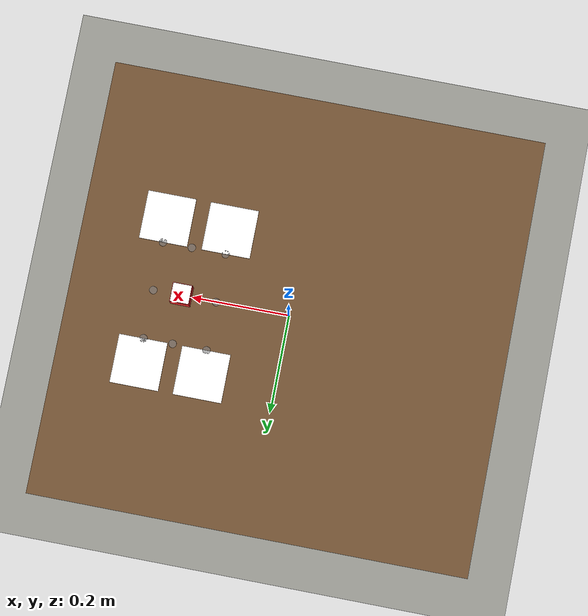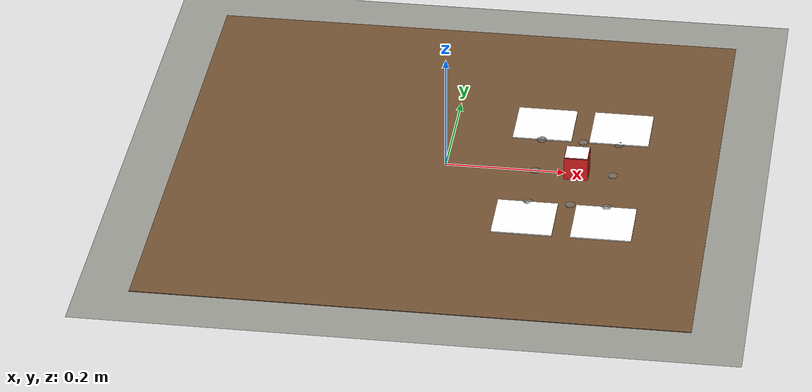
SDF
<?xml version="1.0" ?>
<sdf version="1.9">
  <world name="precision_benchmark">

    <!-- ── Physique ─────────────────────────────────────────────────────── -->
    <physics name="default_physics" type="ode">
      <max_step_size>0.004</max_step_size>
      <real_time_factor>1.0</real_time_factor>
    </physics>

    <!-- ── Éclairage ────────────────────────────────────────────────────── -->
    <light type="directional" name="sun">
      <cast_shadows>true</cast_shadows>
      <pose>0 0 10 0 0 0</pose>
      <diffuse>0.9 0.9 0.85 1</diffuse>
      <specular>0.3 0.3 0.3 1</specular>
      <attenuation><range>1000</range><constant>0.9</constant></attenuation>
      <direction>-0.5 0.3 -0.9</direction>
    </light>

    <light type="directional" name="fill">
      <cast_shadows>false</cast_shadows>
      <pose>0 0 8 0 0 0</pose>
      <diffuse>0.4 0.4 0.5 1</diffuse>
      <direction>0.5 -0.3 -0.7</direction>
    </light>

    <light type="point" name="bench_light">
      <cast_shadows>false</cast_shadows>
      <pose>0.22 0 1.2 0 0 0</pose>
      <diffuse>0.7 0.7 0.65 1</diffuse>
      <attenuation><range>3</range><constant>0.4</constant><linear>0.1</linear></attenuation>
    </light>

    <!-- ── Sol ──────────────────────────────────────────────────────────── -->
    <model name="ground_plane">
      <static>true</static>
      <link name="link">
        <collision name="col">
          <geometry><plane><normal>0 0 1</normal><size>20 20</size></plane></geometry>
        </collision>
        <visual name="vis">
          <geometry><plane><normal>0 0 1</normal><size>20 20</size></plane></geometry>
          <material><ambient>0.55 0.55 0.52 1</ambient><diffuse>0.6 0.6 0.57 1</diffuse></material>
        </visual>
      </link>
    </model>

    <!-- ── Table sous le robot ──────────────────────────────────────────── -->
    <model name="table">
      <static>true</static>
      <pose>0 0 -0.02 0 0 0</pose>
      <link name="link">
        <visual name="vis">
          <geometry><box><size>0.9 0.9 0.04</size></box></geometry>
          <material>
            <ambient>0.35 0.25 0.15 1</ambient>
            <diffuse>0.45 0.32 0.20 1</diffuse>
          </material>
        </visual>
        <collision name="col">
          <geometry><box><size>0.9 0.9 0.04</size></box></geometry>
        </collision>
      </link>
    </model>

    <!-- ID 0 : avant-gauche -->
    <model name="ws_marker_0">
      <static>true</static>
      <pose>0.150 -0.150 0.001 0 0 0</pose>
      <link name="link">
        <visual name="vis">
          <geometry><box><size>0.100 0.100 0.002</size></box></geometry>
          <material>
            <ambient>1 1 1 1</ambient>
            <diffuse>1 1 1 1</diffuse>
            <specular>0 0 0 0</specular>
            <pbr><metal>
              <albedo_map>textures/aruco_4x4_0000.png</albedo_map>
            </metal></pbr>
          </material>
        </visual>
        <collision name="col">
          <geometry><box><size>0.100 0.100 0.002</size></box></geometry>
        </collision>
      </link>
    </model>

    <!-- ID 1 : avant-droit -->
    <model name="ws_marker_1">
      <static>true</static>
      <pose>0.150 0.150 0.001 0 0 0</pose>
      <link name="link">
        <visual name="vis">
          <geometry><box><size>0.100 0.100 0.002</size></box></geometry>
          <material>
            <ambient>1 1 1 1</ambient>
            <diffuse>1 1 1 1</diffuse>
            <specular>0 0 0 0</specular>
            <pbr><metal>
              <albedo_map>textures/aruco_4x4_0001.png</albedo_map>
            </metal></pbr>
          </material>
        </visual>
        <collision name="col">
          <geometry><box><size>0.100 0.100 0.002</size></box></geometry>
        </collision>
      </link>
    </model>

    <!-- ID 2 : arrière-gauche -->
    <model name="ws_marker_2">
      <static>true</static>
      <pose>0.280 -0.150 0.001 0 0 0</pose>
      <link name="link">
        <visual name="vis">
          <geometry><box><size>0.100 0.100 0.002</size></box></geometry>
          <material>
            <ambient>1 1 1 1</ambient>
            <diffuse>1 1 1 1</diffuse>
            <specular>0 0 0 0</specular>
            <pbr><metal>
              <albedo_map>textures/aruco_4x4_0002.png</albedo_map>
            </metal></pbr>
          </material>
        </visual>
        <collision name="col">
          <geometry><box><size>0.100 0.100 0.002</size></box></geometry>
        </collision>
      </link>
    </model>

    <!-- ID 3 : arrière-droit -->
    <model name="ws_marker_3">
      <static>true</static>
      <pose>0.280 0.150 0.001 0 0 0</pose>
      <link name="link">
        <visual name="vis">
          <geometry><box><size>0.100 0.100 0.002</size></box></geometry>
          <material>
            <ambient>1 1 1 1</ambient>
            <diffuse>1 1 1 1</diffuse>
            <specular>0 0 0 0</specular>
            <pbr><metal>
              <albedo_map>textures/aruco_4x4_0003.png</albedo_map>
            </metal></pbr>
          </material>
        </visual>
        <collision name="col">
          <geometry><box><size>0.100 0.100 0.002</size></box></geometry>
        </collision>
      </link>
    </model>

    <model name="target_cube">
      <static>false</static>
      <pose>0.22 0.00 0.02 0 0 0</pose>
      <link name="link">
        <!-- Corps rouge visible sur 5 faces -->
        <visual name="vis_body">
          <geometry><box><size>0.04 0.04 0.04</size></box></geometry>
          <material>
            <ambient>0.85 0.10 0.10 1</ambient>
            <diffuse>0.95 0.15 0.15 1</diffuse>
            <specular>0.40 0.10 0.10 1</specular>
          </material>
        </visual>
        <!-- Marqueur ArUco ID 10 sur la face supérieure (décalé 0.021 au-dessus du centre) -->
        <visual name="vis_aruco">
          <pose>0 0 0.021 0 0 0</pose>
          <geometry><box><size>0.038 0.038 0.001</size></box></geometry>
          <material>
            <ambient>1 1 1 1</ambient>
            <diffuse>1 1 1 1</diffuse>
            <specular>0 0 0 0</specular>
            <pbr><metal>
              <albedo_map>textures/aruco_4x4_0010.png</albedo_map>
            </metal></pbr>
          </material>
        </visual>
        <collision name="col">
          <geometry><box><size>0.04 0.04 0.04</size></box></geometry>
        </collision>
        <inertial>
          <mass>0.05</mass>
          <inertia>
            <ixx>1.33e-5</ixx><iyy>1.33e-5</iyy><izz>1.33e-5</izz>
            <ixy>0</ixy><ixz>0</ixz><iyz>0</iyz>
          </inertia>
        </inertial>
      </link>
    </model>

    <!-- Ligne x=0.15 -->
    <model name="grid_pt_0"> <static>true</static> <pose>0.15 -0.10 0.001 0 0 0</pose>
      <link name="l"><visual name="v"><geometry><cylinder><radius>0.008</radius><length>0.002</length></cylinder></geometry>
        <material><ambient>0.5 0.5 0.5 0.6</ambient></material></visual></link></model>
    <model name="grid_pt_1"> <static>true</static> <pose>0.15  0.00 0.001 0 0 0</pose>
      <link name="l"><visual name="v"><geometry><cylinder><radius>0.008</radius><length>0.002</length></cylinder></geometry>
        <material><ambient>0.5 0.5 0.5 0.6</ambient></material></visual></link></model>
    <model name="grid_pt_2"> <static>true</static> <pose>0.15  0.10 0.001 0 0 0</pose>
      <link name="l"><visual name="v"><geometry><cylinder><radius>0.008</radius><length>0.002</length></cylinder></geometry>
        <material><ambient>0.5 0.5 0.5 0.6</ambient></material></visual></link></model>

    <!-- Ligne x=0.22 -->
    <model name="grid_pt_3"> <static>true</static> <pose>0.22 -0.10 0.001 0 0 0</pose>
      <link name="l"><visual name="v"><geometry><cylinder><radius>0.008</radius><length>0.002</length></cylinder></geometry>
        <material><ambient>0.5 0.5 0.5 0.6</ambient></material></visual></link></model>
    <model name="grid_pt_4"> <static>true</static> <pose>0.22  0.00 0.001 0 0 0</pose>
      <link name="l"><visual name="v"><geometry><cylinder><radius>0.008</radius><length>0.002</length></cylinder></geometry>
        <material><ambient>0.5 0.5 0.5 0.6</ambient></material></visual></link></model>
    <model name="grid_pt_5"> <static>true</static> <pose>0.22  0.10 0.001 0 0 0</pose>
      <link name="l"><visual name="v"><geometry><cylinder><radius>0.008</radius><length>0.002</length></cylinder></geometry>
        <material><ambient>0.5 0.5 0.5 0.6</ambient></material></visual></link></model>

    <!-- Ligne x=0.28 -->
    <model name="grid_pt_6"> <static>true</static> <pose>0.28 -0.10 0.001 0 0 0</pose>
      <link name="l"><visual name="v"><geometry><cylinder><radius>0.008</radius><length>0.002</length></cylinder></geometry>
        <material><ambient>0.5 0.5 0.5 0.6</ambient></material></visual></link></model>
    <model name="grid_pt_7"> <static>true</static> <pose>0.28  0.00 0.001 0 0 0</pose>
      <link name="l"><visual name="v"><geometry><cylinder><radius>0.008</radius><length>0.002</length></cylinder></geometry>
        <material><ambient>0.5 0.5 0.5 0.6</ambient></material></visual></link></model>
    <model name="grid_pt_8"> <static>true</static> <pose>0.28  0.10 0.001 0 0 0</pose>
      <link name="l"><visual name="v"><geometry><cylinder><radius>0.008</radius><length>0.002</length></cylinder></geometry>
        <material><ambient>0.5 0.5 0.5 0.6</ambient></material></visual></link></model>

  </world>
</sdf>
